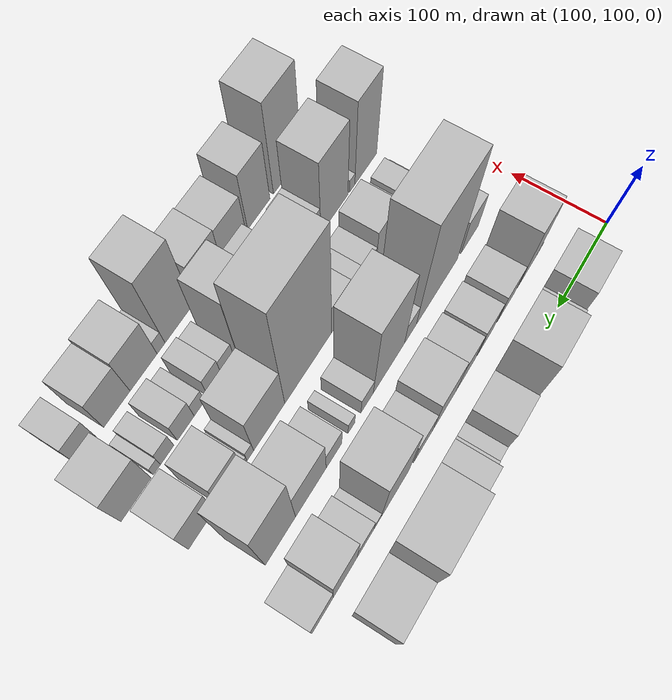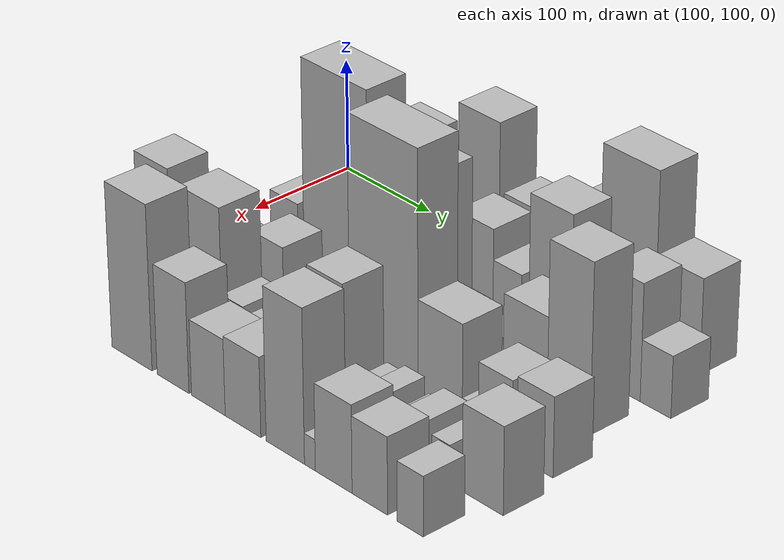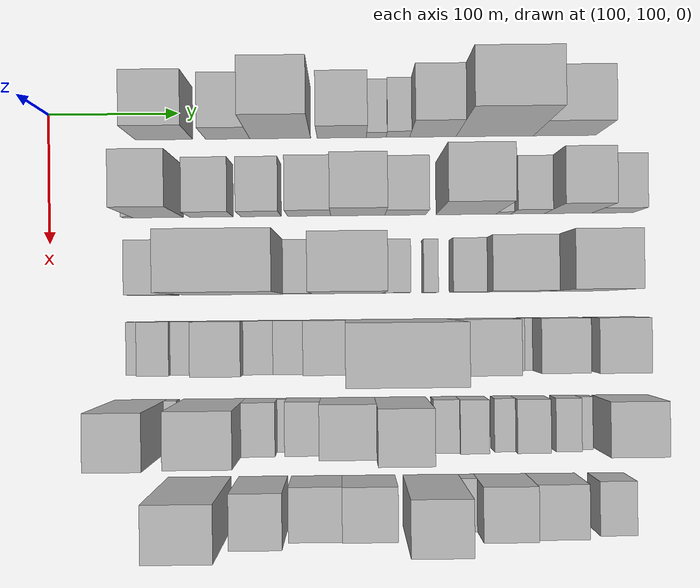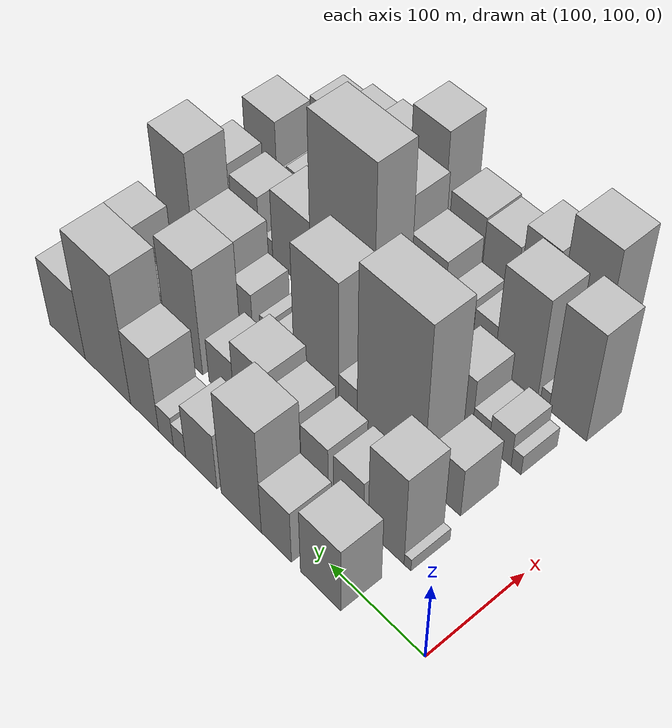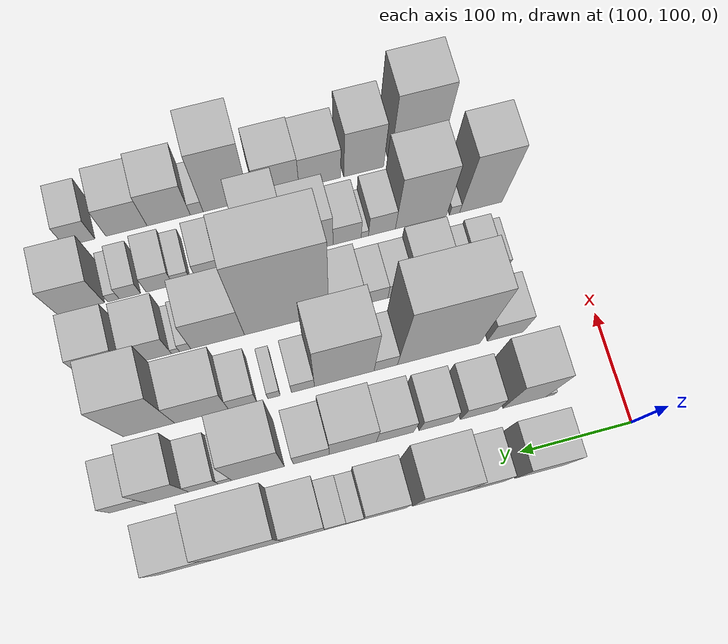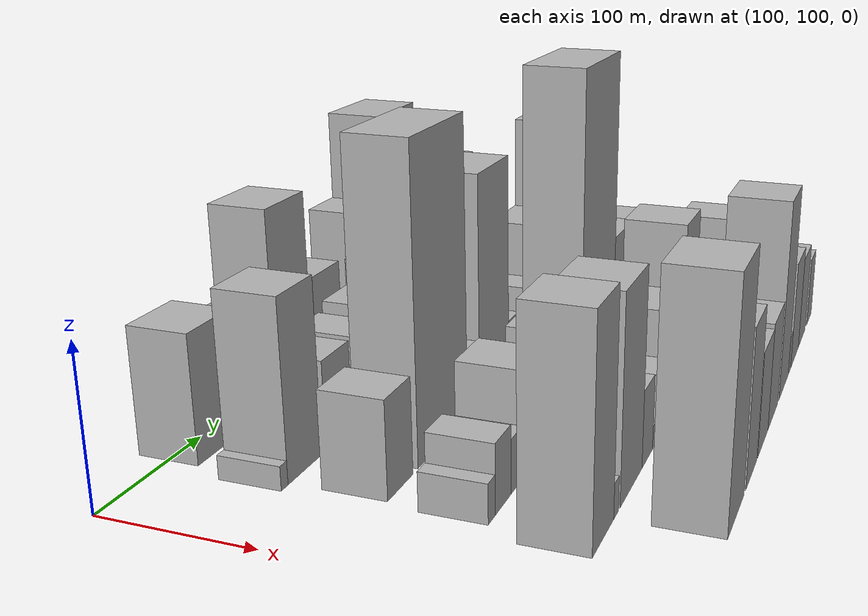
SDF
<sdf version="1.6">
 <world name="default">
  <model name="building_33">
   <static>1</static>
   <pose>100.0000 188.9396 0 0.000000 0.000000 0.000000</pose>
   <link name="link">
    <pose>0 0 40.50 0 0 0</pose>
    <collision name="collision"><geometry><box><size>40.0000 43.9792 81.0000</size></box></geometry></collision>
    <visual name="visual">
     <cast_shadows>0</cast_shadows>
     <geometry><box><size>40.0000 43.9792 81.0000</size></box></geometry>
     <material>
      <script>
       <uri>model://HANNAS_wall/materials/scripts</uri>
       <uri>model://HANNAS_wall/materials/textures</uri>
       <name>vrc/HANNAS_wall</name>
      </script>
     </material>
    </visual>
   </link>
  </model>
  <model name="building_34">
   <static>1</static>
   <pose>100.0000 237.9428 0 0.000000 0.000000 0.000000</pose>
   <link name="link">
    <pose>0 0 33.00 0 0 0</pose>
    <collision name="collision"><geometry><box><size>40.0000 34.0271 66.0000</size></box></geometry></collision>
    <visual name="visual">
     <cast_shadows>0</cast_shadows>
     <geometry><box><size>40.0000 34.0271 66.0000</size></box></geometry>
     <material>
      <script>
       <uri>model://HANNAS_wall/materials/scripts</uri>
       <uri>model://HANNAS_wall/materials/textures</uri>
       <name>vrc/HANNAS_wall</name>
      </script>
     </material>
    </visual>
   </link>
  </model>
  <model name="building_35">
   <static>1</static>
   <pose>100.0000 278.3701 0 0.000000 0.000000 0.000000</pose>
   <link name="link">
    <pose>0 0 64.50 0 0 0</pose>
    <collision name="collision"><geometry><box><size>40.0000 46.8276 129.0000</size></box></geometry></collision>
    <visual name="visual">
     <cast_shadows>0</cast_shadows>
     <geometry><box><size>40.0000 46.8276 129.0000</size></box></geometry>
     <material>
      <script>
       <uri>model://HANNAS_wall/materials/scripts</uri>
       <uri>model://HANNAS_wall/materials/textures</uri>
       <name>vrc/HANNAS_wall</name>
      </script>
     </material>
    </visual>
   </link>
  </model>
  <model name="building_36">
   <static>1</static>
   <pose>100.0000 325.7030 0 0.000000 0.000000 0.000000</pose>
   <link name="link">
    <pose>0 0 34.50 0 0 0</pose>
    <collision name="collision"><geometry><box><size>40.0000 37.8383 69.0000</size></box></geometry></collision>
    <visual name="visual">
     <cast_shadows>0</cast_shadows>
     <geometry><box><size>40.0000 37.8383 69.0000</size></box></geometry>
     <material>
      <script>
       <uri>model://HANNAS_wall/materials/scripts</uri>
       <uri>model://HANNAS_wall/materials/textures</uri>
       <name>vrc/HANNAS_wall</name>
      </script>
     </material>
    </visual>
   </link>
  </model>
  <model name="building_37">
   <static>1</static>
   <pose>100.0000 352.2603 0 0.000000 0.000000 0.000000</pose>
   <link name="link">
    <pose>0 0 15.00 0 0 0</pose>
    <collision name="collision"><geometry><box><size>40.0000 15.2763 30.0000</size></box></geometry></collision>
    <visual name="visual">
     <cast_shadows>0</cast_shadows>
     <geometry><box><size>40.0000 15.2763 30.0000</size></box></geometry>
     <material>
      <script>
       <uri>model://HANNAS_wall/materials/scripts</uri>
       <uri>model://HANNAS_wall/materials/textures</uri>
       <name>vrc/HANNAS_wall</name>
      </script>
     </material>
    </visual>
   </link>
  </model>
  <model name="building_38">
   <static>1</static>
   <pose>100.0000 368.9714 0 0.000000 0.000000 0.000000</pose>
   <link name="link">
    <pose>0 0 18.00 0 0 0</pose>
    <collision name="collision"><geometry><box><size>40.0000 18.1458 36.0000</size></box></geometry></collision>
    <visual name="visual">
     <cast_shadows>0</cast_shadows>
     <geometry><box><size>40.0000 18.1458 36.0000</size></box></geometry>
     <material>
      <script>
       <uri>model://HANNAS_wall/materials/scripts</uri>
       <uri>model://HANNAS_wall/materials/textures</uri>
       <name>vrc/HANNAS_wall</name>
      </script>
     </material>
    </visual>
   </link>
  </model>
  <model name="building_39">
   <static>1</static>
   <pose>100.0000 395.9041 0 0.000000 0.000000 0.000000</pose>
   <link name="link">
    <pose>0 0 46.50 0 0 0</pose>
    <collision name="collision"><geometry><box><size>40.0000 35.7198 93.0000</size></box></geometry></collision>
    <visual name="visual">
     <cast_shadows>0</cast_shadows>
     <geometry><box><size>40.0000 35.7198 93.0000</size></box></geometry>
     <material>
      <script>
       <uri>model://HANNAS_wall/materials/scripts</uri>
       <uri>model://HANNAS_wall/materials/textures</uri>
       <name>vrc/HANNAS_wall</name>
      </script>
     </material>
    </visual>
   </link>
  </model>
  <model name="building_40">
   <static>1</static>
   <pose>100.0000 443.6201 0 0.000000 0.000000 0.000000</pose>
   <link name="link">
    <pose>0 0 78.00 0 0 0</pose>
    <collision name="collision"><geometry><box><size>40.0000 59.7121 156.0000</size></box></geometry></collision>
    <visual name="visual">
     <cast_shadows>0</cast_shadows>
     <geometry><box><size>40.0000 59.7121 156.0000</size></box></geometry>
     <material>
      <script>
       <uri>model://HANNAS_wall/materials/scripts</uri>
       <uri>model://HANNAS_wall/materials/textures</uri>
       <name>vrc/HANNAS_wall</name>
      </script>
     </material>
    </visual>
   </link>
  </model>
  <model name="building_41">
   <static>1</static>
   <pose>100.0000 497.5030 0 0.000000 0.000000 0.000000</pose>
   <link name="link">
    <pose>0 0 42.00 0 0 0</pose>
    <collision name="collision"><geometry><box><size>40.0000 48.0537 84.0000</size></box></geometry></collision>
    <visual name="visual">
     <cast_shadows>0</cast_shadows>
     <geometry><box><size>40.0000 48.0537 84.0000</size></box></geometry>
     <material>
      <script>
       <uri>model://HANNAS_wall/materials/scripts</uri>
       <uri>model://HANNAS_wall/materials/textures</uri>
       <name>vrc/HANNAS_wall</name>
      </script>
     </material>
    </visual>
   </link>
  </model>
  <model name="building_89">
   <static>1</static>
   <pose>160.0000 160.6171 0 0.000000 0.000000 0.000000</pose>
   <link name="link">
    <pose>0 0 7.50 0 0 0</pose>
    <collision name="collision"><geometry><box><size>40.0000 7.3497 15.0000</size></box></geometry></collision>
    <visual name="visual">
     <cast_shadows>0</cast_shadows>
     <geometry><box><size>40.0000 7.3497 15.0000</size></box></geometry>
     <material>
      <script>
       <uri>model://HANNAS_wall/materials/scripts</uri>
       <uri>model://HANNAS_wall/materials/textures</uri>
       <name>vrc/HANNAS_wall</name>
      </script>
     </material>
    </visual>
   </link>
  </model>
  <model name="building_90">
   <static>1</static>
   <pose>160.0000 183.7148 0 0.000000 0.000000 0.000000</pose>
   <link name="link">
    <pose>0 0 55.50 0 0 0</pose>
    <collision name="collision"><geometry><box><size>40.0000 38.8458 111.0000</size></box></geometry></collision>
    <visual name="visual">
     <cast_shadows>0</cast_shadows>
     <geometry><box><size>40.0000 38.8458 111.0000</size></box></geometry>
     <material>
      <script>
       <uri>model://HANNAS_wall/materials/scripts</uri>
       <uri>model://HANNAS_wall/materials/textures</uri>
       <name>vrc/HANNAS_wall</name>
      </script>
     </material>
    </visual>
   </link>
  </model>
  <model name="building_91">
   <static>1</static>
   <pose>160.0000 224.8835 0 0.000000 0.000000 0.000000</pose>
   <link name="link">
    <pose>0 0 28.50 0 0 0</pose>
    <collision name="collision"><geometry><box><size>40.0000 33.4914 57.0000</size></box></geometry></collision>
    <visual name="visual">
     <cast_shadows>0</cast_shadows>
     <geometry><box><size>40.0000 33.4914 57.0000</size></box></geometry>
     <material>
      <script>
       <uri>model://HANNAS_wall/materials/scripts</uri>
       <uri>model://HANNAS_wall/materials/textures</uri>
       <name>vrc/HANNAS_wall</name>
      </script>
     </material>
    </visual>
   </link>
  </model>
  <model name="building_92">
   <static>1</static>
   <pose>160.0000 263.1109 0 0.000000 0.000000 0.000000</pose>
   <link name="link">
    <pose>0 0 28.50 0 0 0</pose>
    <collision name="collision"><geometry><box><size>40.0000 30.9634 57.0000</size></box></geometry></collision>
    <visual name="visual">
     <cast_shadows>0</cast_shadows>
     <geometry><box><size>40.0000 30.9634 57.0000</size></box></geometry>
     <material>
      <script>
       <uri>model://HANNAS_wall/materials/scripts</uri>
       <uri>model://HANNAS_wall/materials/textures</uri>
       <name>vrc/HANNAS_wall</name>
      </script>
     </material>
    </visual>
   </link>
  </model>
  <model name="building_93">
   <static>1</static>
   <pose>160.0000 300.1120 0 0.000000 0.000000 0.000000</pose>
   <link name="link">
    <pose>0 0 31.50 0 0 0</pose>
    <collision name="collision"><geometry><box><size>40.0000 33.0388 63.0000</size></box></geometry></collision>
    <visual name="visual">
     <cast_shadows>0</cast_shadows>
     <geometry><box><size>40.0000 33.0388 63.0000</size></box></geometry>
     <material>
      <script>
       <uri>model://HANNAS_wall/materials/scripts</uri>
       <uri>model://HANNAS_wall/materials/textures</uri>
       <name>vrc/HANNAS_wall</name>
      </script>
     </material>
    </visual>
   </link>
  </model>
  <model name="building_94">
   <static>1</static>
   <pose>160.0000 337.4584 0 0.000000 0.000000 0.000000</pose>
   <link name="link">
    <pose>0 0 40.50 0 0 0</pose>
    <collision name="collision"><geometry><box><size>40.0000 41.6539 81.0000</size></box></geometry></collision>
    <visual name="visual">
     <cast_shadows>0</cast_shadows>
     <geometry><box><size>40.0000 41.6539 81.0000</size></box></geometry>
     <material>
      <script>
       <uri>model://HANNAS_wall/materials/scripts</uri>
       <uri>model://HANNAS_wall/materials/textures</uri>
       <name>vrc/HANNAS_wall</name>
      </script>
     </material>
    </visual>
   </link>
  </model>
  <model name="building_95">
   <static>1</static>
   <pose>160.0000 374.0161 0 0.000000 0.000000 0.000000</pose>
   <link name="link">
    <pose>0 0 27.00 0 0 0</pose>
    <collision name="collision"><geometry><box><size>40.0000 31.4616 54.0000</size></box></geometry></collision>
    <visual name="visual">
     <cast_shadows>0</cast_shadows>
     <geometry><box><size>40.0000 31.4616 54.0000</size></box></geometry>
     <material>
      <script>
       <uri>model://HANNAS_wall/materials/scripts</uri>
       <uri>model://HANNAS_wall/materials/textures</uri>
       <name>vrc/HANNAS_wall</name>
      </script>
     </material>
    </visual>
   </link>
  </model>
  <model name="building_96">
   <static>1</static>
   <pose>160.0000 420.7444 0 0.000000 0.000000 0.000000</pose>
   <link name="link">
    <pose>0 0 64.50 0 0 0</pose>
    <collision name="collision"><geometry><box><size>40.0000 45.9949 129.0000</size></box></geometry></collision>
    <visual name="visual">
     <cast_shadows>0</cast_shadows>
     <geometry><box><size>40.0000 45.9949 129.0000</size></box></geometry>
     <material>
      <script>
       <uri>model://HANNAS_wall/materials/scripts</uri>
       <uri>model://HANNAS_wall/materials/textures</uri>
       <name>vrc/HANNAS_wall</name>
      </script>
     </material>
    </visual>
   </link>
  </model>
  <model name="building_97">
   <static>1</static>
   <pose>160.0000 449.5972 0 0.000000 0.000000 0.000000</pose>
   <link name="link">
    <pose>0 0 12.00 0 0 0</pose>
    <collision name="collision"><geometry><box><size>40.0000 11.7109 24.0000</size></box></geometry></collision>
    <visual name="visual">
     <cast_shadows>0</cast_shadows>
     <geometry><box><size>40.0000 11.7109 24.0000</size></box></geometry>
     <material>
      <script>
       <uri>model://HANNAS_wall/materials/scripts</uri>
       <uri>model://HANNAS_wall/materials/textures</uri>
       <name>vrc/HANNAS_wall</name>
      </script>
     </material>
    </visual>
   </link>
  </model>
  <model name="building_98">
   <static>1</static>
   <pose>160.0000 468.4165 0 0.000000 0.000000 0.000000</pose>
   <link name="link">
    <pose>0 0 22.50 0 0 0</pose>
    <collision name="collision"><geometry><box><size>40.0000 25.9276 45.0000</size></box></geometry></collision>
    <visual name="visual">
     <cast_shadows>0</cast_shadows>
     <geometry><box><size>40.0000 25.9276 45.0000</size></box></geometry>
     <material>
      <script>
       <uri>model://HANNAS_wall/materials/scripts</uri>
       <uri>model://HANNAS_wall/materials/textures</uri>
       <name>vrc/HANNAS_wall</name>
      </script>
     </material>
    </visual>
   </link>
  </model>
  <model name="building_99">
   <static>1</static>
   <pose>160.0000 499.4880 0 0.000000 0.000000 0.000000</pose>
   <link name="link">
    <pose>0 0 51.00 0 0 0</pose>
    <collision name="collision"><geometry><box><size>40.0000 36.2155 102.0000</size></box></geometry></collision>
    <visual name="visual">
     <cast_shadows>0</cast_shadows>
     <geometry><box><size>40.0000 36.2155 102.0000</size></box></geometry>
     <material>
      <script>
       <uri>model://HANNAS_wall/materials/scripts</uri>
       <uri>model://HANNAS_wall/materials/textures</uri>
       <name>vrc/HANNAS_wall</name>
      </script>
     </material>
    </visual>
   </link>
  </model>
  <model name="building_100">
   <static>1</static>
   <pose>160.0000 533.5473 0 0.000000 0.000000 0.000000</pose>
   <link name="link">
    <pose>0 0 27.00 0 0 0</pose>
    <collision name="collision"><geometry><box><size>40.0000 31.9031 54.0000</size></box></geometry></collision>
    <visual name="visual">
     <cast_shadows>0</cast_shadows>
     <geometry><box><size>40.0000 31.9031 54.0000</size></box></geometry>
     <material>
      <script>
       <uri>model://HANNAS_wall/materials/scripts</uri>
       <uri>model://HANNAS_wall/materials/textures</uri>
       <name>vrc/HANNAS_wall</name>
      </script>
     </material>
    </visual>
   </link>
  </model>
  <model name="building_147">
   <static>1</static>
   <pose>220.0000 182.6544 0 0.000000 0.000000 0.000000</pose>
   <link name="link">
    <pose>0 0 30.00 0 0 0</pose>
    <collision name="collision"><geometry><box><size>40.0000 32.9972 60.0000</size></box></geometry></collision>
    <visual name="visual">
     <cast_shadows>0</cast_shadows>
     <geometry><box><size>40.0000 32.9972 60.0000</size></box></geometry>
     <material>
      <script>
       <uri>model://HANNAS_wall/materials/scripts</uri>
       <uri>model://HANNAS_wall/materials/textures</uri>
       <name>vrc/HANNAS_wall</name>
      </script>
     </material>
    </visual>
   </link>
  </model>
  <model name="building_148">
   <static>1</static>
   <pose>220.0000 243.6349 0 0.000000 0.000000 0.000000</pose>
   <link name="link">
    <pose>0 0 96.00 0 0 0</pose>
    <collision name="collision"><geometry><box><size>40.0000 74.9638 192.0000</size></box></geometry></collision>
    <visual name="visual">
     <cast_shadows>0</cast_shadows>
     <geometry><box><size>40.0000 74.9638 192.0000</size></box></geometry>
     <material>
      <script>
       <uri>model://HANNAS_wall/materials/scripts</uri>
       <uri>model://HANNAS_wall/materials/textures</uri>
       <name>vrc/HANNAS_wall</name>
      </script>
     </material>
    </visual>
   </link>
  </model>
  <model name="building_149">
   <static>1</static>
   <pose>220.0000 291.6667 0 0.000000 0.000000 0.000000</pose>
   <link name="link">
    <pose>0 0 21.00 0 0 0</pose>
    <collision name="collision"><geometry><box><size>40.0000 21.0998 42.0000</size></box></geometry></collision>
    <visual name="visual">
     <cast_shadows>0</cast_shadows>
     <geometry><box><size>40.0000 21.0998 42.0000</size></box></geometry>
     <material>
      <script>
       <uri>model://HANNAS_wall/materials/scripts</uri>
       <uri>model://HANNAS_wall/materials/textures</uri>
       <name>vrc/HANNAS_wall</name>
      </script>
     </material>
    </visual>
   </link>
  </model>
  <model name="building_150">
   <static>1</static>
   <pose>220.0000 328.9497 0 0.000000 0.000000 0.000000</pose>
   <link name="link">
    <pose>0 0 75.00 0 0 0</pose>
    <collision name="collision"><geometry><box><size>40.0000 53.4662 150.0000</size></box></geometry></collision>
    <visual name="visual">
     <cast_shadows>0</cast_shadows>
     <geometry><box><size>40.0000 53.4662 150.0000</size></box></geometry>
     <material>
      <script>
       <uri>model://HANNAS_wall/materials/scripts</uri>
       <uri>model://HANNAS_wall/materials/textures</uri>
       <name>vrc/HANNAS_wall</name>
      </script>
     </material>
    </visual>
   </link>
  </model>
  <model name="building_151">
   <static>1</static>
   <pose>220.0000 365.9780 0 0.000000 0.000000 0.000000</pose>
   <link name="link">
    <pose>0 0 18.00 0 0 0</pose>
    <collision name="collision"><geometry><box><size>40.0000 20.5905 36.0000</size></box></geometry></collision>
    <visual name="visual">
     <cast_shadows>0</cast_shadows>
     <geometry><box><size>40.0000 20.5905 36.0000</size></box></geometry>
     <material>
      <script>
       <uri>model://HANNAS_wall/materials/scripts</uri>
       <uri>model://HANNAS_wall/materials/textures</uri>
       <name>vrc/HANNAS_wall</name>
      </script>
     </material>
    </visual>
   </link>
  </model>
  <model name="building_152">
   <static>1</static>
   <pose>220.0000 391.8012 0 0.000000 0.000000 0.000000</pose>
   <link name="link">
    <pose>0 0 13.50 0 0 0</pose>
    <collision name="collision"><geometry><box><size>40.0000 11.0559 27.0000</size></box></geometry></collision>
    <visual name="visual">
     <cast_shadows>0</cast_shadows>
     <geometry><box><size>40.0000 11.0559 27.0000</size></box></geometry>
     <material>
      <script>
       <uri>model://HANNAS_wall/materials/scripts</uri>
       <uri>model://HANNAS_wall/materials/textures</uri>
       <name>vrc/HANNAS_wall</name>
      </script>
     </material>
    </visual>
   </link>
  </model>
  <model name="building_153">
   <static>1</static>
   <pose>220.0000 419.8937 0 0.000000 0.000000 0.000000</pose>
   <link name="link">
    <pose>0 0 21.00 0 0 0</pose>
    <collision name="collision"><geometry><box><size>40.0000 25.1291 42.0000</size></box></geometry></collision>
    <visual name="visual">
     <cast_shadows>0</cast_shadows>
     <geometry><box><size>40.0000 25.1291 42.0000</size></box></geometry>
     <material>
      <script>
       <uri>model://HANNAS_wall/materials/scripts</uri>
       <uri>model://HANNAS_wall/materials/textures</uri>
       <name>vrc/HANNAS_wall</name>
      </script>
     </material>
    </visual>
   </link>
  </model>
  <model name="building_154">
   <static>1</static>
   <pose>220.0000 456.1696 0 0.000000 0.000000 0.000000</pose>
   <link name="link">
    <pose>0 0 40.50 0 0 0</pose>
    <collision name="collision"><geometry><box><size>40.0000 47.4227 81.0000</size></box></geometry></collision>
    <visual name="visual">
     <cast_shadows>0</cast_shadows>
     <geometry><box><size>40.0000 47.4227 81.0000</size></box></geometry>
     <material>
      <script>
       <uri>model://HANNAS_wall/materials/scripts</uri>
       <uri>model://HANNAS_wall/materials/textures</uri>
       <name>vrc/HANNAS_wall</name>
      </script>
     </material>
    </visual>
   </link>
  </model>
  <model name="building_155">
   <static>1</static>
   <pose>220.0000 502.5780 0 0.000000 0.000000 0.000000</pose>
   <link name="link">
    <pose>0 0 73.50 0 0 0</pose>
    <collision name="collision"><geometry><box><size>40.0000 45.3941 147.0000</size></box></geometry></collision>
    <visual name="visual">
     <cast_shadows>0</cast_shadows>
     <geometry><box><size>40.0000 45.3941 147.0000</size></box></geometry>
     <material>
      <script>
       <uri>model://HANNAS_wall/materials/scripts</uri>
       <uri>model://HANNAS_wall/materials/textures</uri>
       <name>vrc/HANNAS_wall</name>
      </script>
     </material>
    </visual>
   </link>
  </model>
  <model name="building_201">
   <static>1</static>
   <pose>280.0000 166.8368 0 0.000000 0.000000 0.000000</pose>
   <link name="link">
    <pose>0 0 12.00 0 0 0</pose>
    <collision name="collision"><geometry><box><size>40.0000 10.5381 24.0000</size></box></geometry></collision>
    <visual name="visual">
     <cast_shadows>0</cast_shadows>
     <geometry><box><size>40.0000 10.5381 24.0000</size></box></geometry>
     <material>
      <script>
       <uri>model://HANNAS_wall/materials/scripts</uri>
       <uri>model://HANNAS_wall/materials/textures</uri>
       <name>vrc/HANNAS_wall</name>
      </script>
     </material>
    </visual>
   </link>
  </model>
  <model name="building_202">
   <static>1</static>
   <pose>280.0000 184.0936 0 0.000000 0.000000 0.000000</pose>
   <link name="link">
    <pose>0 0 21.00 0 0 0</pose>
    <collision name="collision"><geometry><box><size>40.0000 23.9755 42.0000</size></box></geometry></collision>
    <visual name="visual">
     <cast_shadows>0</cast_shadows>
     <geometry><box><size>40.0000 23.9755 42.0000</size></box></geometry>
     <material>
      <script>
       <uri>model://HANNAS_wall/materials/scripts</uri>
       <uri>model://HANNAS_wall/materials/textures</uri>
       <name>vrc/HANNAS_wall</name>
      </script>
     </material>
    </visual>
   </link>
  </model>
  <model name="building_203">
   <static>1</static>
   <pose>280.0000 205.1877 0 0.000000 0.000000 0.000000</pose>
   <link name="link">
    <pose>0 0 16.50 0 0 0</pose>
    <collision name="collision"><geometry><box><size>40.0000 18.2128 33.0000</size></box></geometry></collision>
    <visual name="visual">
     <cast_shadows>0</cast_shadows>
     <geometry><box><size>40.0000 18.2128 33.0000</size></box></geometry>
     <material>
      <script>
       <uri>model://HANNAS_wall/materials/scripts</uri>
       <uri>model://HANNAS_wall/materials/textures</uri>
       <name>vrc/HANNAS_wall</name>
      </script>
     </material>
    </visual>
   </link>
  </model>
  <model name="building_204">
   <static>1</static>
   <pose>280.0000 232.6467 0 0.000000 0.000000 0.000000</pose>
   <link name="link">
    <pose>0 0 33.00 0 0 0</pose>
    <collision name="collision"><geometry><box><size>40.0000 36.7051 66.0000</size></box></geometry></collision>
    <visual name="visual">
     <cast_shadows>0</cast_shadows>
     <geometry><box><size>40.0000 36.7051 66.0000</size></box></geometry>
     <material>
      <script>
       <uri>model://HANNAS_wall/materials/scripts</uri>
       <uri>model://HANNAS_wall/materials/textures</uri>
       <name>vrc/HANNAS_wall</name>
      </script>
     </material>
    </visual>
   </link>
  </model>
  <model name="building_205">
   <static>1</static>
   <pose>280.0000 262.0068 0 0.000000 0.000000 0.000000</pose>
   <link name="link">
    <pose>0 0 19.50 0 0 0</pose>
    <collision name="collision"><geometry><box><size>40.0000 22.0152 39.0000</size></box></geometry></collision>
    <visual name="visual">
     <cast_shadows>0</cast_shadows>
     <geometry><box><size>40.0000 22.0152 39.0000</size></box></geometry>
     <material>
      <script>
       <uri>model://HANNAS_wall/materials/scripts</uri>
       <uri>model://HANNAS_wall/materials/textures</uri>
       <name>vrc/HANNAS_wall</name>
      </script>
     </material>
    </visual>
   </link>
  </model>
  <model name="building_206">
   <static>1</static>
   <pose>280.0000 284.4449 0 0.000000 0.000000 0.000000</pose>
   <link name="link">
    <pose>0 0 19.50 0 0 0</pose>
    <collision name="collision"><geometry><box><size>40.0000 22.8610 39.0000</size></box></geometry></collision>
    <visual name="visual">
     <cast_shadows>0</cast_shadows>
     <geometry><box><size>40.0000 22.8610 39.0000</size></box></geometry>
     <material>
      <script>
       <uri>model://HANNAS_wall/materials/scripts</uri>
       <uri>model://HANNAS_wall/materials/textures</uri>
       <name>vrc/HANNAS_wall</name>
      </script>
     </material>
    </visual>
   </link>
  </model>
  <model name="building_207">
   <static>1</static>
   <pose>280.0000 311.5531 0 0.000000 0.000000 0.000000</pose>
   <link name="link">
    <pose>0 0 28.50 0 0 0</pose>
    <collision name="collision"><geometry><box><size>40.0000 31.3556 57.0000</size></box></geometry></collision>
    <visual name="visual">
     <cast_shadows>0</cast_shadows>
     <geometry><box><size>40.0000 31.3556 57.0000</size></box></geometry>
     <material>
      <script>
       <uri>model://HANNAS_wall/materials/scripts</uri>
       <uri>model://HANNAS_wall/materials/textures</uri>
       <name>vrc/HANNAS_wall</name>
      </script>
     </material>
    </visual>
   </link>
  </model>
  <model name="building_208">
   <static>1</static>
   <pose>280.0000 365.3699 0 0.000000 0.000000 0.000000</pose>
   <link name="link">
    <pose>0 0 106.50 0 0 0</pose>
    <collision name="collision"><geometry><box><size>40.0000 76.2780 213.0000</size></box></geometry></collision>
    <visual name="visual">
     <cast_shadows>0</cast_shadows>
     <geometry><box><size>40.0000 76.2780 213.0000</size></box></geometry>
     <material>
      <script>
       <uri>model://HANNAS_wall/materials/scripts</uri>
       <uri>model://HANNAS_wall/materials/textures</uri>
       <name>vrc/HANNAS_wall</name>
      </script>
     </material>
    </visual>
   </link>
  </model>
  <model name="building_209">
   <static>1</static>
   <pose>280.0000 427.7091 0 0.000000 0.000000 0.000000</pose>
   <link name="link">
    <pose>0 0 43.50 0 0 0</pose>
    <collision name="collision"><geometry><box><size>40.0000 48.4003 87.0000</size></box></geometry></collision>
    <visual name="visual">
     <cast_shadows>0</cast_shadows>
     <geometry><box><size>40.0000 48.4003 87.0000</size></box></geometry>
     <material>
      <script>
       <uri>model://HANNAS_wall/materials/scripts</uri>
       <uri>model://HANNAS_wall/materials/textures</uri>
       <name>vrc/HANNAS_wall</name>
      </script>
     </material>
    </visual>
   </link>
  </model>
  <model name="building_210">
   <static>1</static>
   <pose>280.0000 456.9348 0 0.000000 0.000000 0.000000</pose>
   <link name="link">
    <pose>0 0 12.00 0 0 0</pose>
    <collision name="collision"><geometry><box><size>40.0000 10.0512 24.0000</size></box></geometry></collision>
    <visual name="visual">
     <cast_shadows>0</cast_shadows>
     <geometry><box><size>40.0000 10.0512 24.0000</size></box></geometry>
     <material>
      <script>
       <uri>model://HANNAS_wall/materials/scripts</uri>
       <uri>model://HANNAS_wall/materials/textures</uri>
       <name>vrc/HANNAS_wall</name>
      </script>
     </material>
    </visual>
   </link>
  </model>
  <model name="building_211">
   <static>1</static>
   <pose>280.0000 465.5245 0 0.000000 0.000000 0.000000</pose>
   <link name="link">
    <pose>0 0 7.50 0 0 0</pose>
    <collision name="collision"><geometry><box><size>40.0000 7.1282 15.0000</size></box></geometry></collision>
    <visual name="visual">
     <cast_shadows>0</cast_shadows>
     <geometry><box><size>40.0000 7.1282 15.0000</size></box></geometry>
     <material>
      <script>
       <uri>model://HANNAS_wall/materials/scripts</uri>
       <uri>model://HANNAS_wall/materials/textures</uri>
       <name>vrc/HANNAS_wall</name>
      </script>
     </material>
    </visual>
   </link>
  </model>
  <model name="building_212">
   <static>1</static>
   <pose>280.0000 487.0868 0 0.000000 0.000000 0.000000</pose>
   <link name="link">
    <pose>0 0 31.50 0 0 0</pose>
    <collision name="collision"><geometry><box><size>40.0000 35.9964 63.0000</size></box></geometry></collision>
    <visual name="visual">
     <cast_shadows>0</cast_shadows>
     <geometry><box><size>40.0000 35.9964 63.0000</size></box></geometry>
     <material>
      <script>
       <uri>model://HANNAS_wall/materials/scripts</uri>
       <uri>model://HANNAS_wall/materials/textures</uri>
       <name>vrc/HANNAS_wall</name>
      </script>
     </material>
    </visual>
   </link>
  </model>
  <model name="building_213">
   <static>1</static>
   <pose>280.0000 528.9119 0 0.000000 0.000000 0.000000</pose>
   <link name="link">
    <pose>0 0 34.50 0 0 0</pose>
    <collision name="collision"><geometry><box><size>40.0000 37.6538 69.0000</size></box></geometry></collision>
    <visual name="visual">
     <cast_shadows>0</cast_shadows>
     <geometry><box><size>40.0000 37.6538 69.0000</size></box></geometry>
     <material>
      <script>
       <uri>model://HANNAS_wall/materials/scripts</uri>
       <uri>model://HANNAS_wall/materials/textures</uri>
       <name>vrc/HANNAS_wall</name>
      </script>
     </material>
    </visual>
   </link>
  </model>
  <model name="building_261">
   <static>1</static>
   <pose>340.0000 169.1779 0 0.000000 0.000000 0.000000</pose>
   <link name="link">
    <pose>0 0 66.00 0 0 0</pose>
    <collision name="collision"><geometry><box><size>40.0000 39.9557 132.0000</size></box></geometry></collision>
    <visual name="visual">
     <cast_shadows>0</cast_shadows>
     <geometry><box><size>40.0000 39.9557 132.0000</size></box></geometry>
     <material>
      <script>
       <uri>model://HANNAS_wall/materials/scripts</uri>
       <uri>model://HANNAS_wall/materials/textures</uri>
       <name>vrc/HANNAS_wall</name>
      </script>
     </material>
    </visual>
   </link>
  </model>
  <model name="building_262">
   <static>1</static>
   <pose>340.0000 193.9363 0 0.000000 0.000000 0.000000</pose>
   <link name="link">
    <pose>0 0 10.50 0 0 0</pose>
    <collision name="collision"><geometry><box><size>40.0000 9.5610 21.0000</size></box></geometry></collision>
    <visual name="visual">
     <cast_shadows>0</cast_shadows>
     <geometry><box><size>40.0000 9.5610 21.0000</size></box></geometry>
     <material>
      <script>
       <uri>model://HANNAS_wall/materials/scripts</uri>
       <uri>model://HANNAS_wall/materials/textures</uri>
       <name>vrc/HANNAS_wall</name>
      </script>
     </material>
    </visual>
   </link>
  </model>
  <model name="building_263">
   <static>1</static>
   <pose>340.0000 225.5544 0 0.000000 0.000000 0.000000</pose>
   <link name="link">
    <pose>0 0 61.50 0 0 0</pose>
    <collision name="collision"><geometry><box><size>40.0000 47.6751 123.0000</size></box></geometry></collision>
    <visual name="visual">
     <cast_shadows>0</cast_shadows>
     <geometry><box><size>40.0000 47.6751 123.0000</size></box></geometry>
     <material>
      <script>
       <uri>model://HANNAS_wall/materials/scripts</uri>
       <uri>model://HANNAS_wall/materials/textures</uri>
       <name>vrc/HANNAS_wall</name>
      </script>
     </material>
    </visual>
   </link>
  </model>
  <model name="building_264">
   <static>1</static>
   <pose>340.0000 261.9227 0 0.000000 0.000000 0.000000</pose>
   <link name="link">
    <pose>0 0 24.00 0 0 0</pose>
    <collision name="collision"><geometry><box><size>40.0000 25.0617 48.0000</size></box></geometry></collision>
    <visual name="visual">
     <cast_shadows>0</cast_shadows>
     <geometry><box><size>40.0000 25.0617 48.0000</size></box></geometry>
     <material>
      <script>
       <uri>model://HANNAS_wall/materials/scripts</uri>
       <uri>model://HANNAS_wall/materials/textures</uri>
       <name>vrc/HANNAS_wall</name>
      </script>
     </material>
    </visual>
   </link>
  </model>
  <model name="building_265">
   <static>1</static>
   <pose>340.0000 277.8906 0 0.000000 0.000000 0.000000</pose>
   <link name="link">
    <pose>0 0 7.50 0 0 0</pose>
    <collision name="collision"><geometry><box><size>40.0000 6.8741 15.0000</size></box></geometry></collision>
    <visual name="visual">
     <cast_shadows>0</cast_shadows>
     <geometry><box><size>40.0000 6.8741 15.0000</size></box></geometry>
     <material>
      <script>
       <uri>model://HANNAS_wall/materials/scripts</uri>
       <uri>model://HANNAS_wall/materials/textures</uri>
       <name>vrc/HANNAS_wall</name>
      </script>
     </material>
    </visual>
   </link>
  </model>
  <model name="building_266">
   <static>1</static>
   <pose>340.0000 294.3957 0 0.000000 0.000000 0.000000</pose>
   <link name="link">
    <pose>0 0 22.50 0 0 0</pose>
    <collision name="collision"><geometry><box><size>40.0000 26.1361 45.0000</size></box></geometry></collision>
    <visual name="visual">
     <cast_shadows>0</cast_shadows>
     <geometry><box><size>40.0000 26.1361 45.0000</size></box></geometry>
     <material>
      <script>
       <uri>model://HANNAS_wall/materials/scripts</uri>
       <uri>model://HANNAS_wall/materials/textures</uri>
       <name>vrc/HANNAS_wall</name>
      </script>
     </material>
    </visual>
   </link>
  </model>
  <model name="building_267">
   <static>1</static>
   <pose>340.0000 328.1386 0 0.000000 0.000000 0.000000</pose>
   <link name="link">
    <pose>0 0 37.50 0 0 0</pose>
    <collision name="collision"><geometry><box><size>40.0000 41.3496 75.0000</size></box></geometry></collision>
    <visual name="visual">
     <cast_shadows>0</cast_shadows>
     <geometry><box><size>40.0000 41.3496 75.0000</size></box></geometry>
     <material>
      <script>
       <uri>model://HANNAS_wall/materials/scripts</uri>
       <uri>model://HANNAS_wall/materials/textures</uri>
       <name>vrc/HANNAS_wall</name>
      </script>
     </material>
    </visual>
   </link>
  </model>
  <model name="building_268">
   <static>1</static>
   <pose>340.0000 368.4274 0 0.000000 0.000000 0.000000</pose>
   <link name="link">
    <pose>0 0 58.50 0 0 0</pose>
    <collision name="collision"><geometry><box><size>40.0000 39.2280 117.0000</size></box></geometry></collision>
    <visual name="visual">
     <cast_shadows>0</cast_shadows>
     <geometry><box><size>40.0000 39.2280 117.0000</size></box></geometry>
     <material>
      <script>
       <uri>model://HANNAS_wall/materials/scripts</uri>
       <uri>model://HANNAS_wall/materials/textures</uri>
       <name>vrc/HANNAS_wall</name>
      </script>
     </material>
    </visual>
   </link>
  </model>
  <model name="building_269">
   <static>1</static>
   <pose>340.0000 401.7434 0 0.000000 0.000000 0.000000</pose>
   <link name="link">
    <pose>0 0 18.00 0 0 0</pose>
    <collision name="collision"><geometry><box><size>40.0000 19.4040 36.0000</size></box></geometry></collision>
    <visual name="visual">
     <cast_shadows>0</cast_shadows>
     <geometry><box><size>40.0000 19.4040 36.0000</size></box></geometry>
     <material>
      <script>
       <uri>model://HANNAS_wall/materials/scripts</uri>
       <uri>model://HANNAS_wall/materials/textures</uri>
       <name>vrc/HANNAS_wall</name>
      </script>
     </material>
    </visual>
   </link>
  </model>
  <model name="building_270">
   <static>1</static>
   <pose>340.0000 422.1762 0 0.000000 0.000000 0.000000</pose>
   <link name="link">
    <pose>0 0 21.00 0 0 0</pose>
    <collision name="collision"><geometry><box><size>40.0000 21.4616 42.0000</size></box></geometry></collision>
    <visual name="visual">
     <cast_shadows>0</cast_shadows>
     <geometry><box><size>40.0000 21.4616 42.0000</size></box></geometry>
     <material>
      <script>
       <uri>model://HANNAS_wall/materials/scripts</uri>
       <uri>model://HANNAS_wall/materials/textures</uri>
       <name>vrc/HANNAS_wall</name>
      </script>
     </material>
    </visual>
   </link>
  </model>
  <model name="building_271">
   <static>1</static>
   <pose>340.0000 445.8072 0 0.000000 0.000000 0.000000</pose>
   <link name="link">
    <pose>0 0 15.00 0 0 0</pose>
    <collision name="collision"><geometry><box><size>40.0000 15.8004 30.0000</size></box></geometry></collision>
    <visual name="visual">
     <cast_shadows>0</cast_shadows>
     <geometry><box><size>40.0000 15.8004 30.0000</size></box></geometry>
     <material>
      <script>
       <uri>model://HANNAS_wall/materials/scripts</uri>
       <uri>model://HANNAS_wall/materials/textures</uri>
       <name>vrc/HANNAS_wall</name>
      </script>
     </material>
    </visual>
   </link>
  </model>
  <model name="building_272">
   <static>1</static>
   <pose>340.0000 466.1675 0 0.000000 0.000000 0.000000</pose>
   <link name="link">
    <pose>0 0 21.00 0 0 0</pose>
    <collision name="collision"><geometry><box><size>40.0000 24.9201 42.0000</size></box></geometry></collision>
    <visual name="visual">
     <cast_shadows>0</cast_shadows>
     <geometry><box><size>40.0000 24.9201 42.0000</size></box></geometry>
     <material>
      <script>
       <uri>model://HANNAS_wall/materials/scripts</uri>
       <uri>model://HANNAS_wall/materials/textures</uri>
       <name>vrc/HANNAS_wall</name>
      </script>
     </material>
    </visual>
   </link>
  </model>
  <model name="building_273">
   <static>1</static>
   <pose>340.0000 493.2802 0 0.000000 0.000000 0.000000</pose>
   <link name="link">
    <pose>0 0 16.50 0 0 0</pose>
    <collision name="collision"><geometry><box><size>40.0000 19.3053 33.0000</size></box></geometry></collision>
    <visual name="visual">
     <cast_shadows>0</cast_shadows>
     <geometry><box><size>40.0000 19.3053 33.0000</size></box></geometry>
     <material>
      <script>
       <uri>model://HANNAS_wall/materials/scripts</uri>
       <uri>model://HANNAS_wall/materials/textures</uri>
       <name>vrc/HANNAS_wall</name>
      </script>
     </material>
    </visual>
   </link>
  </model>
  <model name="building_274">
   <static>1</static>
   <pose>340.0000 508.1003 0 0.000000 0.000000 0.000000</pose>
   <link name="link">
    <pose>0 0 10.50 0 0 0</pose>
    <collision name="collision"><geometry><box><size>40.0000 10.3351 21.0000</size></box></geometry></collision>
    <visual name="visual">
     <cast_shadows>0</cast_shadows>
     <geometry><box><size>40.0000 10.3351 21.0000</size></box></geometry>
     <material>
      <script>
       <uri>model://HANNAS_wall/materials/scripts</uri>
       <uri>model://HANNAS_wall/materials/textures</uri>
       <name>vrc/HANNAS_wall</name>
      </script>
     </material>
    </visual>
   </link>
  </model>
  <model name="building_275">
   <static>1</static>
   <pose>340.0000 537.4753 0 0.000000 0.000000 0.000000</pose>
   <link name="link">
    <pose>0 0 37.50 0 0 0</pose>
    <collision name="collision"><geometry><box><size>40.0000 42.4148 75.0000</size></box></geometry></collision>
    <visual name="visual">
     <cast_shadows>0</cast_shadows>
     <geometry><box><size>40.0000 42.4148 75.0000</size></box></geometry>
     <material>
      <script>
       <uri>model://HANNAS_wall/materials/scripts</uri>
       <uri>model://HANNAS_wall/materials/textures</uri>
       <name>vrc/HANNAS_wall</name>
      </script>
     </material>
    </visual>
   </link>
  </model>
  <model name="building_315">
   <static>1</static>
   <pose>400.0000 213.6157 0 0.000000 0.000000 0.000000</pose>
   <link name="link">
    <pose>0 0 72.00 0 0 0</pose>
    <collision name="collision"><geometry><box><size>40.0000 48.4327 144.0000</size></box></geometry></collision>
    <visual name="visual">
     <cast_shadows>0</cast_shadows>
     <geometry><box><size>40.0000 48.4327 144.0000</size></box></geometry>
     <material>
      <script>
       <uri>model://HANNAS_wall/materials/scripts</uri>
       <uri>model://HANNAS_wall/materials/textures</uri>
       <name>vrc/HANNAS_wall</name>
      </script>
     </material>
    </visual>
   </link>
  </model>
  <model name="building_316">
   <static>1</static>
   <pose>400.0000 262.6261 0 0.000000 0.000000 0.000000</pose>
   <link name="link">
    <pose>0 0 48.00 0 0 0</pose>
    <collision name="collision"><geometry><box><size>40.0000 37.5881 96.0000</size></box></geometry></collision>
    <visual name="visual">
     <cast_shadows>0</cast_shadows>
     <geometry><box><size>40.0000 37.5881 96.0000</size></box></geometry>
     <material>
      <script>
       <uri>model://HANNAS_wall/materials/scripts</uri>
       <uri>model://HANNAS_wall/materials/textures</uri>
       <name>vrc/HANNAS_wall</name>
      </script>
     </material>
    </visual>
   </link>
  </model>
  <model name="building_317">
   <static>1</static>
   <pose>400.0000 303.9210 0 0.000000 0.000000 0.000000</pose>
   <link name="link">
    <pose>0 0 33.00 0 0 0</pose>
    <collision name="collision"><geometry><box><size>40.0000 39.0019 66.0000</size></box></geometry></collision>
    <visual name="visual">
     <cast_shadows>0</cast_shadows>
     <geometry><box><size>40.0000 39.0019 66.0000</size></box></geometry>
     <material>
      <script>
       <uri>model://HANNAS_wall/materials/scripts</uri>
       <uri>model://HANNAS_wall/materials/textures</uri>
       <name>vrc/HANNAS_wall</name>
      </script>
     </material>
    </visual>
   </link>
  </model>
  <model name="building_318">
   <static>1</static>
   <pose>400.0000 343.7076 0 0.000000 0.000000 0.000000</pose>
   <link name="link">
    <pose>0 0 34.50 0 0 0</pose>
    <collision name="collision"><geometry><box><size>40.0000 40.5712 69.0000</size></box></geometry></collision>
    <visual name="visual">
     <cast_shadows>0</cast_shadows>
     <geometry><box><size>40.0000 40.5712 69.0000</size></box></geometry>
     <material>
      <script>
       <uri>model://HANNAS_wall/materials/scripts</uri>
       <uri>model://HANNAS_wall/materials/textures</uri>
       <name>vrc/HANNAS_wall</name>
      </script>
     </material>
    </visual>
   </link>
  </model>
  <model name="building_319">
   <static>1</static>
   <pose>400.0000 391.3746 0 0.000000 0.000000 0.000000</pose>
   <link name="link">
    <pose>0 0 66.00 0 0 0</pose>
    <collision name="collision"><geometry><box><size>40.0000 42.7629 132.0000</size></box></geometry></collision>
    <visual name="visual">
     <cast_shadows>0</cast_shadows>
     <geometry><box><size>40.0000 42.7629 132.0000</size></box></geometry>
     <material>
      <script>
       <uri>model://HANNAS_wall/materials/scripts</uri>
       <uri>model://HANNAS_wall/materials/textures</uri>
       <name>vrc/HANNAS_wall</name>
      </script>
     </material>
    </visual>
   </link>
  </model>
  <model name="building_320">
   <static>1</static>
   <pose>400.0000 418.7234 0 0.000000 0.000000 0.000000</pose>
   <link name="link">
    <pose>0 0 13.50 0 0 0</pose>
    <collision name="collision"><geometry><box><size>40.0000 11.9347 27.0000</size></box></geometry></collision>
    <visual name="visual">
     <cast_shadows>0</cast_shadows>
     <geometry><box><size>40.0000 11.9347 27.0000</size></box></geometry>
     <material>
      <script>
       <uri>model://HANNAS_wall/materials/scripts</uri>
       <uri>model://HANNAS_wall/materials/textures</uri>
       <name>vrc/HANNAS_wall</name>
      </script>
     </material>
    </visual>
   </link>
  </model>
  <model name="building_321">
   <static>1</static>
   <pose>400.0000 444.6440 0 0.000000 0.000000 0.000000</pose>
   <link name="link">
    <pose>0 0 37.50 0 0 0</pose>
    <collision name="collision"><geometry><box><size>40.0000 39.9065 75.0000</size></box></geometry></collision>
    <visual name="visual">
     <cast_shadows>0</cast_shadows>
     <geometry><box><size>40.0000 39.9065 75.0000</size></box></geometry>
     <material>
      <script>
       <uri>model://HANNAS_wall/materials/scripts</uri>
       <uri>model://HANNAS_wall/materials/textures</uri>
       <name>vrc/HANNAS_wall</name>
      </script>
     </material>
    </visual>
   </link>
  </model>
  <model name="building_322">
   <static>1</static>
   <pose>400.0000 483.5553 0 0.000000 0.000000 0.000000</pose>
   <link name="link">
    <pose>0 0 33.00 0 0 0</pose>
    <collision name="collision"><geometry><box><size>40.0000 37.9162 66.0000</size></box></geometry></collision>
    <visual name="visual">
     <cast_shadows>0</cast_shadows>
     <geometry><box><size>40.0000 37.9162 66.0000</size></box></geometry>
     <material>
      <script>
       <uri>model://HANNAS_wall/materials/scripts</uri>
       <uri>model://HANNAS_wall/materials/textures</uri>
       <name>vrc/HANNAS_wall</name>
      </script>
     </material>
    </visual>
   </link>
  </model>
  <model name="building_323">
   <static>1</static>
   <pose>400.0000 526.2056 0 0.000000 0.000000 0.000000</pose>
   <link name="link">
    <pose>0 0 25.50 0 0 0</pose>
    <collision name="collision"><geometry><box><size>40.0000 27.3843 51.0000</size></box></geometry></collision>
    <visual name="visual">
     <cast_shadows>0</cast_shadows>
     <geometry><box><size>40.0000 27.3843 51.0000</size></box></geometry>
     <material>
      <script>
       <uri>model://HANNAS_wall/materials/scripts</uri>
       <uri>model://HANNAS_wall/materials/textures</uri>
       <name>vrc/HANNAS_wall</name>
      </script>
     </material>
    </visual>
   </link>
  </model>
 </world>
</sdf>
